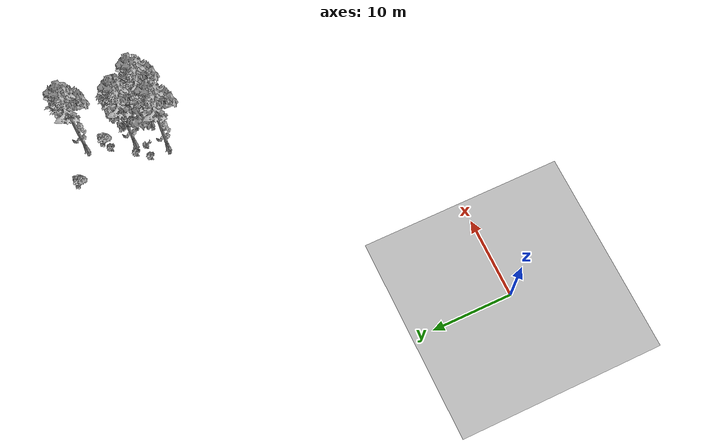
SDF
<sdf version="1.7">
 <world name="default">
  <model name="ground_plane">
   <static>1</static>
   <link name="link">
    <collision name="collision">
     <pose>-50 0 0 0 -0 0</pose>
     <geometry><plane><normal>0 0 1</normal><size>80 80</size></plane></geometry>
     <surface><contact><ode><min_depth>0.01</min_depth><max_vel>0</max_vel></ode></contact></surface>
    </collision>
    <visual name="grass">
     <cast_shadows>0</cast_shadows>
     <geometry>
      <mesh>
       <scale>0.46714285714285714 0.46714285714285714 0.1</scale>
       <uri>file://grass_plane/meshes/grass_plane.dae</uri>
      </mesh>
     </geometry>
    </visual>
   </link>
  </model>
  <model name="Tree 136">
   <static>1</static>
   <pose>37.737749072881584 37.66442163688987 0 1.57079 -0 0</pose>
   <link name="link">
    <collision name="collision">
     <geometry><mesh><scale>3.5 5 3.5</scale><uri>model://tree_9/meshes/tree_9.obj</uri></mesh></geometry>
    </collision>
    <visual name="visual">
     <geometry><mesh><scale>3.5 5 3.5</scale><uri>model://tree_9/meshes/tree_9.obj</uri></mesh></geometry>
    </visual>
   </link>
  </model>
  <model name="Tree 235">
   <static>1</static>
   <pose>37.78704127748715 31.164954930475773 0 1.57079 -0 0</pose>
   <link name="link">
    <collision name="collision">
     <geometry><mesh><scale>3.5 5 3.5</scale><uri>model://tree_2/meshes/tree_2.obj</uri></mesh></geometry>
    </collision>
    <visual name="visual">
     <geometry><mesh><scale>3.5 5 3.5</scale><uri>model://tree_2/meshes/tree_2.obj</uri></mesh></geometry>
    </visual>
   </link>
  </model>
  <model name="Tree 326">
   <static>1</static>
   <pose>33.78301709881279 28.740068868337886 0 1.57079 -0 0</pose>
   <link name="link">
    <collision name="collision">
     <geometry><mesh><scale>3.5 5 3.5</scale><uri>model://tree_9/meshes/tree_9.obj</uri></mesh></geometry>
    </collision>
    <visual name="visual">
     <geometry><mesh><scale>3.5 5 3.5</scale><uri>model://tree_9/meshes/tree_9.obj</uri></mesh></geometry>
    </visual>
   </link>
  </model>
  <model name="Tree 400">
   <static>1</static>
   <pose>35.8757253750489 32.130070200392254 0 1.57079 -0 0</pose>
   <link name="link">
    <collision name="collision">
     <geometry><mesh><scale>3.5 5 3.5</scale><uri>model://tree_9/meshes/tree_9.obj</uri></mesh></geometry>
    </collision>
    <visual name="visual">
     <geometry><mesh><scale>3.5 5 3.5</scale><uri>model://tree_9/meshes/tree_9.obj</uri></mesh></geometry>
    </visual>
   </link>
  </model>
  <model name="Tree 460">
   <static>1</static>
   <pose>37.59116216094597 29.36891701805102 0 1.57079 -0 0</pose>
   <link name="link">
    <collision name="collision">
     <geometry><mesh><scale>3.5 5 3.5</scale><uri>model://tree_9/meshes/tree_9.obj</uri></mesh></geometry>
    </collision>
    <visual name="visual">
     <geometry><mesh><scale>3.5 5 3.5</scale><uri>model://tree_9/meshes/tree_9.obj</uri></mesh></geometry>
    </visual>
   </link>
  </model>
  <model name="Bush 8">
   <static>1</static>
   <pose>33.915623292363605 31.026455854740476 0 1.57079 -0 0</pose>
   <link name="link">
    <collision name="collision">
     <geometry><mesh><scale>2 2 2</scale><uri>model://bush_2/meshes/bush_2.obj</uri></mesh></geometry>
     <surface><contact><collide_without_contact>false</collide_without_contact></contact></surface>
    </collision>
    <visual name="visual">
     <geometry><mesh><scale>2 2 2</scale><uri>model://bush_2/meshes/bush_2.obj</uri></mesh></geometry>
    </visual>
   </link>
  </model>
  <model name="Bush 116">
   <static>1</static>
   <pose>36.98497061048941 34.96064564436821 0 1.57079 -0 0</pose>
   <link name="link">
    <collision name="collision">
     <geometry><mesh><scale>2 2 2</scale><uri>model://bush_2/meshes/bush_2.obj</uri></mesh></geometry>
     <surface><contact><collide_without_contact>false</collide_without_contact></contact></surface>
    </collision>
    <visual name="visual">
     <geometry><mesh><scale>2 2 2</scale><uri>model://bush_2/meshes/bush_2.obj</uri></mesh></geometry>
    </visual>
   </link>
  </model>
  <model name="Bush 157">
   <static>1</static>
   <pose>37.962967242554 35.223626035122905 0 1.57079 -0 0</pose>
   <link name="link">
    <collision name="collision">
     <geometry><mesh><scale>2 2 2</scale><uri>model://bush_1/meshes/bush_1.obj</uri></mesh></geometry>
     <surface><contact><collide_without_contact>false</collide_without_contact></contact></surface>
    </collision>
    <visual name="visual">
     <geometry><mesh><scale>2 2 2</scale><uri>model://bush_1/meshes/bush_1.obj</uri></mesh></geometry>
    </visual>
   </link>
  </model>
  <model name="Bush 230">
   <static>1</static>
   <pose>35.075755707097684 32.43466828249734 0 1.57079 -0 0</pose>
   <link name="link">
    <collision name="collision">
     <geometry><mesh><scale>2 2 2</scale><uri>model://bush_2/meshes/bush_2.obj</uri></mesh></geometry>
     <surface><contact><collide_without_contact>false</collide_without_contact></contact></surface>
    </collision>
    <visual name="visual">
     <geometry><mesh><scale>2 2 2</scale><uri>model://bush_2/meshes/bush_2.obj</uri></mesh></geometry>
    </visual>
   </link>
  </model>
  <model name="Bush 305">
   <static>1</static>
   <pose>35.011905354917275 31.097019790998488 0 1.57079 -0 0</pose>
   <link name="link">
    <collision name="collision">
     <geometry><mesh><scale>2 2 2</scale><uri>model://bush_5/meshes/bush_5.obj</uri></mesh></geometry>
     <surface><contact><collide_without_contact>false</collide_without_contact></contact></surface>
    </collision>
    <visual name="visual">
     <geometry><mesh><scale>2 2 2</scale><uri>model://bush_5/meshes/bush_5.obj</uri></mesh></geometry>
    </visual>
   </link>
  </model>
  <model name="Bush 518">
   <static>1</static>
   <pose>34.107746798799226 39.82764632510677 0 1.57079 -0 0</pose>
   <link name="link">
    <collision name="collision">
     <geometry><mesh><scale>2 2 2</scale><uri>model://bush_1/meshes/bush_1.obj</uri></mesh></geometry>
     <surface><contact><collide_without_contact>false</collide_without_contact></contact></surface>
    </collision>
    <visual name="visual">
     <geometry><mesh><scale>2 2 2</scale><uri>model://bush_1/meshes/bush_1.obj</uri></mesh></geometry>
    </visual>
   </link>
  </model>
 </world>
</sdf>
